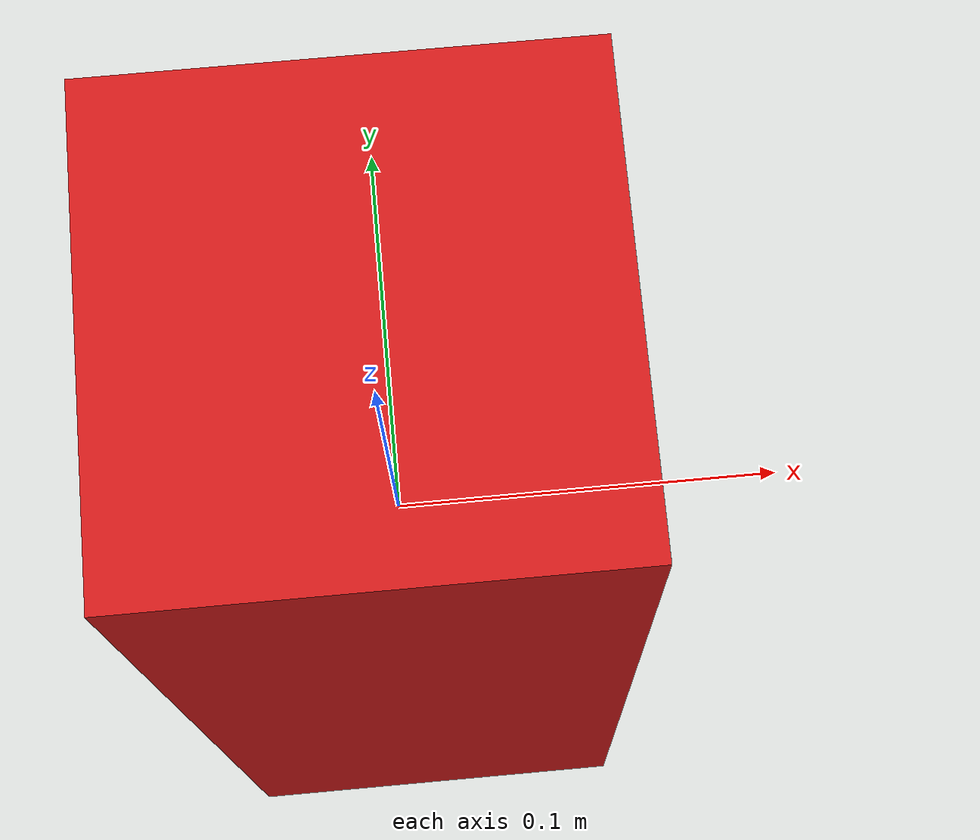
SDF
<?xml version="1.0" ?>
<sdf version="1.8">
  <model name="caja_base">
    <static>false</static>
    <link name="link">
      <inertial>
        <mass>0.06</mass>
        <inertia>
          <ixx>0.0005105</ixx><iyy>0.0005105</iyy><izz>0.000121</izz>
          <ixy>0</ixy><ixz>0</ixz><iyz>0</iyz>
        </inertia>
      </inertial>
      <collision name="collision"><geometry><box><size>0.11 0.11 0.3</size></box></geometry></collision>
      <visual name="visual">
        <geometry><box><size>0.11 0.11 0.3</size></box></geometry>
        <material><ambient>0.8 0.1 0.1 1</ambient><diffuse>0.8 0.1 0.1 1</diffuse></material>
      </visual>
    </link>
  </model>
</sdf>
